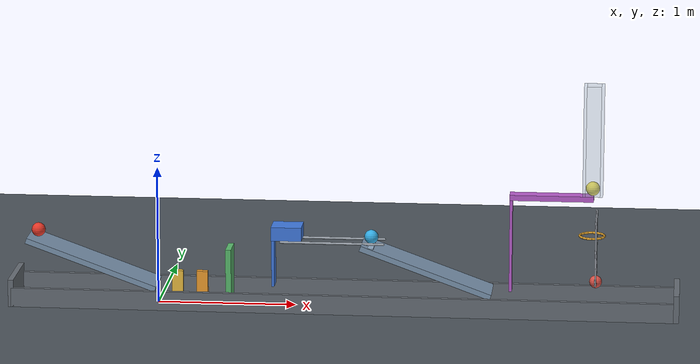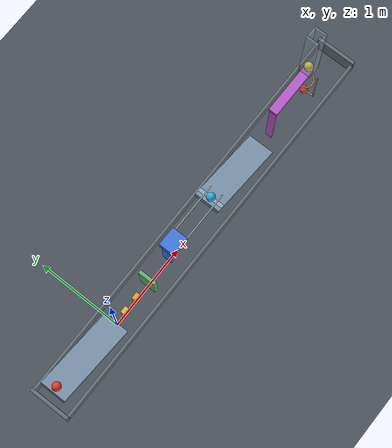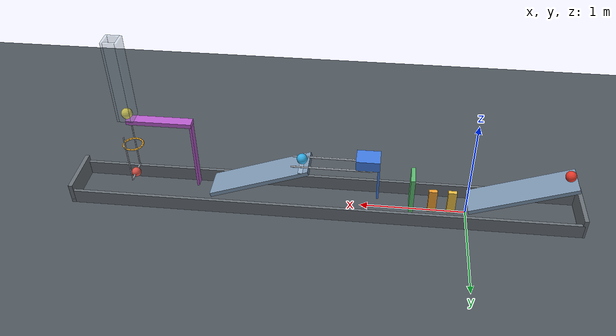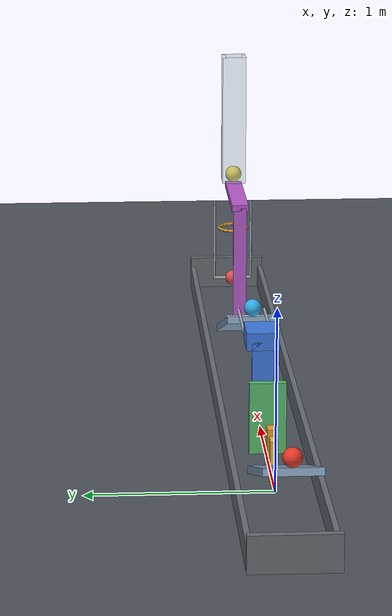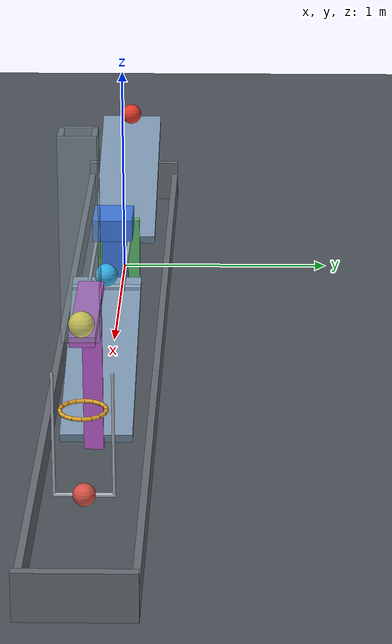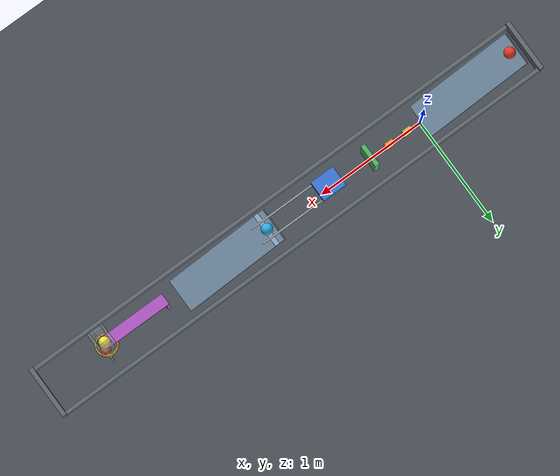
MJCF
<mujoco model="revised_passive_chain_reaction">
  <compiler angle="degree" autolimits="true"/>
  <option timestep="0.002" gravity="0 0 -9.81" integrator="implicitfast" cone="elliptic" iterations="100"/>
  <size njmax="2000" nconmax="500"/>

  <!-- Contact damping approximates restitution 0.05. -->
  <!-- Sliding friction is 0.70 throughout. -->

  <worldbody>
    <light name="overhead_light" pos="1.3 -2 4" dir="0 0 -1" diffuse="0.8 0.8 0.8"/>
    <camera name="overview" pos="1.3 -5 2.5" xyaxes="1 0 0 0 0.36 0.933"/>

    <geom name="floor" type="plane" size="6 3 0.1" friction="0.70 0.005 0.001" solref="0.006 0.6901" solimp="0.95 0.99 0.001" rgba="0.30 0.33 0.36 1"/>

    <!-- Ramp1's downhill edge is at x=0, z=0.15. -->
    <body name="ramp1" pos="-0.469846 0 0.321010" euler="0 20 0">
      <geom name="ramp1_surface" type="box" pos="0 0 -0.02" size="0.50 0.15 0.02" mass="0" friction="0.70 0.005 0.001" solref="0.006 0.6901" solimp="0.95 0.99 0.001" rgba="0.48 0.58 0.68 1"/>
    </body>

    <body name="ball1" pos="-0.875607 0 0.521904">
      <freejoint name="ball1_free"/>
      <geom name="ball1_sphere" type="sphere" size="0.05" mass="0.20" friction="0.70 0.005 0.001" solref="0.006 0.6901" solimp="0.95 0.99 0.001" rgba="0.90 0.22 0.16 1"/>
    </body>

    <!-- The upstream face of domino1 is 0.10 m beyond ramp1. -->
    <body name="domino1" pos="0.14 0 0.12">
      <freejoint name="domino1_free"/>
      <geom name="domino1_box" type="box" size="0.04 0.02 0.12" mass="0.25" friction="0.70 0.005 0.001" solref="0.006 0.6901" solimp="0.95 0.99 0.001" rgba="0.92 0.74 0.25 1"/>
    </body>

    <body name="domino2" pos="0.32 0 0.12">
      <freejoint name="domino2_free"/>
      <geom name="domino2_box" type="box" size="0.04 0.02 0.12" mass="0.25" friction="0.70 0.005 0.001" solref="0.006 0.6901" solimp="0.95 0.99 0.001" rgba="0.94 0.62 0.18 1"/>
    </body>

    <!-- The flap starts upright, with its upstream face at x=0.50. -->
    <body name="flap1" pos="0.52 0 0.025">
      <joint name="flap1_hinge" type="hinge" axis="0 1 0" limited="true" range="0 65" damping="0.04" solreflimit="0.004 1" solimplimit="0.99 0.999 0.0001"/>
      <geom name="flap1_panel" type="box" pos="0 0 0.20" size="0.02 0.10 0.20" mass="0.30" friction="0.70 0.005 0.001" solref="0.006 0.6901" solimp="0.95 0.99 0.001" rgba="0.35 0.73 0.43 1"/>
    </body>

    <!-- The rigid extension lets the flap strike the elevated slide cart. -->
    <!-- The cart's prescribed main box and total moving mass are unchanged. -->
    <body name="cart1" pos="0.94 0 0.55">
      <inertial pos="0 0 0" mass="0.50" diaginertia="0.001766667 0.002433333 0.003366667"/>
      <joint name="cart1_slide" type="slide" axis="1 0 0" limited="true" range="0 0.60" damping="0.20" solreflimit="0.004 1" solimplimit="0.99 0.999 0.0001"/>
      <geom name="cart1_box" type="box" size="0.11 0.09 0.05" mass="0" friction="0.70 0.005 0.001" solref="0.006 0.6901" solimp="0.95 0.99 0.001" rgba="0.25 0.48 0.88 1"/>
      <geom name="cart1_striker_extension" type="box" pos="-0.10 0 -0.20" size="0.01 0.06 0.20" mass="0" friction="0.70 0.005 0.001" solref="0.006 0.6901" solimp="0.95 0.99 0.001" rgba="0.25 0.48 0.88 1"/>
    </body>

    <body name="cart_rails" pos="0 0 0">
      <geom name="cart_rails_left" type="capsule" fromto="0.90 -0.075 0.488 1.64 -0.075 0.488" size="0.008" mass="0" friction="0.70 0.005 0.001" solref="0.006 0.6901" solimp="0.95 0.99 0.001" rgba="0.65 0.68 0.72 1"/>
      <geom name="cart_rails_right" type="capsule" fromto="0.90 0.075 0.488 1.64 0.075 0.488" size="0.008" mass="0" friction="0.70 0.005 0.001" solref="0.006 0.6901" solimp="0.95 0.99 0.001" rgba="0.65 0.68 0.72 1"/>
    </body>

    <!-- Ramp2's downhill edge is at x=2.425607, z=0.15. -->
    <!-- The horizontal shelf holds ball2 without an uphill retaining obstacle. -->
    <!-- Its top is z=0.475, slightly above the inclined surface at the starting contact. -->
    <!-- The shelf belongs to ramp2 and ends 0.025 m downstream of ball2's center. -->
    <body name="ramp2" pos="1.955761 0 0.321010">
      <geom name="ramp2_surface" type="box" euler="0 20 0" pos="-0.0068404 0 -0.0187939" size="0.50 0.15 0.02" mass="0" friction="0.70 0.005 0.001" solref="0.006 0.6901" solimp="0.95 0.99 0.001" rgba="0.48 0.58 0.68 1"/>
      <geom name="ramp2_start_shelf" type="box" pos="-0.403261 0 0.148990" size="0.0225 0.15 0.005" mass="0" friction="0.70 0.005 0.001" solref="0.006 0.6901" solimp="0.95 0.99 0.001" rgba="0.58 0.68 0.78 1"/>
    </body>

    <!-- Cart1's front face reaches this sphere after 0.45 m of travel. -->
    <body name="ball2" pos="1.55 0 0.525">
      <freejoint name="ball2_free"/>
      <geom name="ball2_sphere" type="sphere" size="0.05" mass="0.20" condim="6" friction="0.70 0.005 0.001" solref="0.006 0.6901" solimp="0.95 0.99 0.001" rgba="0.20 0.68 0.90 1"/>
    </body>

    <!-- The center hinge remains at the geometric center of the 0.60 m bar. -->
    <!-- Left-biased ballast assists rotation, but ball3's initial load holds the 0-degree stop. -->
    <!-- The left trigger's upstream face is 0.12 m beyond ramp2's exit. -->
    <body name="lever1" pos="2.845607 0 0.85">
      <inertial pos="-0.112 0 -0.014" mass="0.50" diaginertia="0.003635 0.013050 0.010210"/>
      <joint name="lever1_hinge" type="hinge" axis="0 -1 0" limited="true" range="0 45" damping="0.04" solreflimit="0.004 1" solimplimit="0.99 0.999 0.0001"/>
      <geom name="lever1_bar" type="box" size="0.30 0.05 0.02" mass="0" friction="0.70 0.005 0.001" solref="0.006 0.6901" solimp="0.95 0.99 0.001" rgba="0.72 0.36 0.80 1"/>
      <geom name="lever1_left_trigger" type="box" pos="-0.29 0 -0.35" size="0.01 0.04 0.35" mass="0" friction="0.70 0.005 0.001" solref="0.006 0.6901" solimp="0.95 0.99 0.001" rgba="0.72 0.36 0.80 1"/>
    </body>

    <!-- Ball3 rests just inside the right tip rather than exactly on its corner. -->
    <body name="ball3" pos="3.137607 0 0.92">
      <freejoint name="ball3_free"/>
      <geom name="ball3_sphere" type="sphere" size="0.05" mass="0.20" condim="6" friction="0.70 0.005 0.001" solref="0.006 0.6901" solimp="0.95 0.99 0.001" rgba="0.95 0.87 0.24 1"/>
    </body>

    <!-- The 0.104 m clear guide confines the launch to a nearly vertical path. -->
    <body name="launch_guide" pos="3.137607 0 1.275">
      <geom name="launch_guide_left" type="box" pos="-0.062 0 0" size="0.01 0.072 0.40" mass="0" friction="0.70 0.005 0.001" solref="0.006 0.6901" solimp="0.95 0.99 0.001" rgba="0.65 0.75 0.80 0.35"/>
      <geom name="launch_guide_right" type="box" pos="0.062 0 0" size="0.01 0.072 0.40" mass="0" friction="0.70 0.005 0.001" solref="0.006 0.6901" solimp="0.95 0.99 0.001" rgba="0.65 0.75 0.80 0.35"/>
      <geom name="launch_guide_front" type="box" pos="0 -0.062 0" size="0.052 0.01 0.40" mass="0" friction="0.70 0.005 0.001" solref="0.006 0.6901" solimp="0.95 0.99 0.001" rgba="0.65 0.75 0.80 0.35"/>
      <geom name="launch_guide_back" type="box" pos="0 0.062 0" size="0.052 0.01 0.40" mass="0" friction="0.70 0.005 0.001" solref="0.006 0.6901" solimp="0.95 0.99 0.001" rgba="0.65 0.75 0.80 0.35"/>
    </body>

    <!-- Capsule polygon with minimum clear diameter 0.16 m. -->
    <!-- The ring plane is 0.35 m below ball3's initial center. -->
    <body name="ring1" pos="3.137607 0 0.57">
      <geom name="ring1_segment01" type="capsule" fromto="0.089724 0 0 0.082894 0.034336 0" size="0.008" mass="0" friction="0.70 0.005 0.001" solref="0.006 0.6901" solimp="0.95 0.99 0.001" rgba="0.90 0.65 0.18 1"/>
      <geom name="ring1_segment02" type="capsule" fromto="0.082894 0.034336 0 0.063445 0.063445 0" size="0.008" mass="0" friction="0.70 0.005 0.001" solref="0.006 0.6901" solimp="0.95 0.99 0.001" rgba="0.90 0.65 0.18 1"/>
      <geom name="ring1_segment03" type="capsule" fromto="0.063445 0.063445 0 0.034336 0.082894 0" size="0.008" mass="0" friction="0.70 0.005 0.001" solref="0.006 0.6901" solimp="0.95 0.99 0.001" rgba="0.90 0.65 0.18 1"/>
      <geom name="ring1_segment04" type="capsule" fromto="0.034336 0.082894 0 0 0.089724 0" size="0.008" mass="0" friction="0.70 0.005 0.001" solref="0.006 0.6901" solimp="0.95 0.99 0.001" rgba="0.90 0.65 0.18 1"/>
      <geom name="ring1_segment05" type="capsule" fromto="0 0.089724 0 -0.034336 0.082894 0" size="0.008" mass="0" friction="0.70 0.005 0.001" solref="0.006 0.6901" solimp="0.95 0.99 0.001" rgba="0.90 0.65 0.18 1"/>
      <geom name="ring1_segment06" type="capsule" fromto="-0.034336 0.082894 0 -0.063445 0.063445 0" size="0.008" mass="0" friction="0.70 0.005 0.001" solref="0.006 0.6901" solimp="0.95 0.99 0.001" rgba="0.90 0.65 0.18 1"/>
      <geom name="ring1_segment07" type="capsule" fromto="-0.063445 0.063445 0 -0.082894 0.034336 0" size="0.008" mass="0" friction="0.70 0.005 0.001" solref="0.006 0.6901" solimp="0.95 0.99 0.001" rgba="0.90 0.65 0.18 1"/>
      <geom name="ring1_segment08" type="capsule" fromto="-0.082894 0.034336 0 -0.089724 0 0" size="0.008" mass="0" friction="0.70 0.005 0.001" solref="0.006 0.6901" solimp="0.95 0.99 0.001" rgba="0.90 0.65 0.18 1"/>
      <geom name="ring1_segment09" type="capsule" fromto="-0.089724 0 0 -0.082894 -0.034336 0" size="0.008" mass="0" friction="0.70 0.005 0.001" solref="0.006 0.6901" solimp="0.95 0.99 0.001" rgba="0.90 0.65 0.18 1"/>
      <geom name="ring1_segment10" type="capsule" fromto="-0.082894 -0.034336 0 -0.063445 -0.063445 0" size="0.008" mass="0" friction="0.70 0.005 0.001" solref="0.006 0.6901" solimp="0.95 0.99 0.001" rgba="0.90 0.65 0.18 1"/>
      <geom name="ring1_segment11" type="capsule" fromto="-0.063445 -0.063445 0 -0.034336 -0.082894 0" size="0.008" mass="0" friction="0.70 0.005 0.001" solref="0.006 0.6901" solimp="0.95 0.99 0.001" rgba="0.90 0.65 0.18 1"/>
      <geom name="ring1_segment12" type="capsule" fromto="-0.034336 -0.082894 0 0 -0.089724 0" size="0.008" mass="0" friction="0.70 0.005 0.001" solref="0.006 0.6901" solimp="0.95 0.99 0.001" rgba="0.90 0.65 0.18 1"/>
      <geom name="ring1_segment13" type="capsule" fromto="0 -0.089724 0 0.034336 -0.082894 0" size="0.008" mass="0" friction="0.70 0.005 0.001" solref="0.006 0.6901" solimp="0.95 0.99 0.001" rgba="0.90 0.65 0.18 1"/>
      <geom name="ring1_segment14" type="capsule" fromto="0.034336 -0.082894 0 0.063445 -0.063445 0" size="0.008" mass="0" friction="0.70 0.005 0.001" solref="0.006 0.6901" solimp="0.95 0.99 0.001" rgba="0.90 0.65 0.18 1"/>
      <geom name="ring1_segment15" type="capsule" fromto="0.063445 -0.063445 0 0.082894 -0.034336 0" size="0.008" mass="0" friction="0.70 0.005 0.001" solref="0.006 0.6901" solimp="0.95 0.99 0.001" rgba="0.90 0.65 0.18 1"/>
      <geom name="ring1_segment16" type="capsule" fromto="0.082894 -0.034336 0 0.089724 0 0" size="0.008" mass="0" friction="0.70 0.005 0.001" solref="0.006 0.6901" solimp="0.95 0.99 0.001" rgba="0.90 0.65 0.18 1"/>
    </body>

    <!-- A forked rigid pendulum leaves the central falling path unobstructed. -->
    <!-- Total mass is 0.35 kg; pivot-to-bob-center distance is 0.50 m. -->
    <!-- The 0.03 m lateral offset produces an oblique impact on the bob. -->
    <!-- Nominal ball-center height at contact is 0.32 m, 0.25 m below the ring. -->
    <body name="pendulum1" pos="3.167607 0 0.729861">
      <joint name="pendulum1_hinge" type="hinge" axis="0 1 0" damping="0.04"/>
      <geom name="pendulum1_left_rod" type="capsule" fromto="0 -0.115 0 0 -0.115 -0.50" size="0.006" mass="0.015" friction="0.70 0.005 0.001" solref="0.006 0.6901" solimp="0.95 0.99 0.001" rgba="0.68 0.70 0.74 1"/>
      <geom name="pendulum1_right_rod" type="capsule" fromto="0 0.115 0 0 0.115 -0.50" size="0.006" mass="0.015" friction="0.70 0.005 0.001" solref="0.006 0.6901" solimp="0.95 0.99 0.001" rgba="0.68 0.70 0.74 1"/>
      <geom name="pendulum1_left_bridge" type="capsule" fromto="0 -0.115 -0.50 0 0 -0.50" size="0.008" mass="0.005" friction="0.70 0.005 0.001" solref="0.006 0.6901" solimp="0.95 0.99 0.001" rgba="0.68 0.70 0.74 1"/>
      <geom name="pendulum1_right_bridge" type="capsule" fromto="0 0.115 -0.50 0 0 -0.50" size="0.008" mass="0.005" friction="0.70 0.005 0.001" solref="0.006 0.6901" solimp="0.95 0.99 0.001" rgba="0.68 0.70 0.74 1"/>
      <geom name="pendulum1_bob" type="sphere" pos="0 0 -0.50" size="0.045" mass="0.31" friction="0.70 0.005 0.001" solref="0.006 0.6901" solimp="0.95 0.99 0.001" rgba="0.85 0.32 0.28 1"/>
    </body>

    <body name="catch_fence" pos="0 0 0">
      <geom name="catch_fence_left" type="box" pos="-1.05 0 0.10" size="0.02 0.235 0.10" mass="0" friction="0.70 0.005 0.001" solref="0.006 0.6901" solimp="0.95 0.99 0.001" rgba="0.40 0.43 0.46 1"/>
      <geom name="catch_fence_right" type="box" pos="3.75 0 0.10" size="0.02 0.235 0.10" mass="0" friction="0.70 0.005 0.001" solref="0.006 0.6901" solimp="0.95 0.99 0.001" rgba="0.40 0.43 0.46 1"/>
      <geom name="catch_fence_front" type="box" pos="1.35 -0.22 0.07" size="2.40 0.015 0.07" mass="0" friction="0.70 0.005 0.001" solref="0.006 0.6901" solimp="0.95 0.99 0.001" rgba="0.40 0.43 0.46 1"/>
      <geom name="catch_fence_back" type="box" pos="1.35 0.22 0.07" size="2.40 0.015 0.07" mass="0" friction="0.70 0.005 0.001" solref="0.006 0.6901" solimp="0.95 0.99 0.001" rgba="0.40 0.43 0.46 1"/>
    </body>
  </worldbody>

  <contact>
    <exclude name="launcher_guide_clearance" body1="lever1" body2="launch_guide"/>
  </contact>

  <keyframe>
    <!-- Initial poses are the model poses; all initial velocities are zero. -->
    <key name="start" time="0"/>
  </keyframe>
</mujoco>
